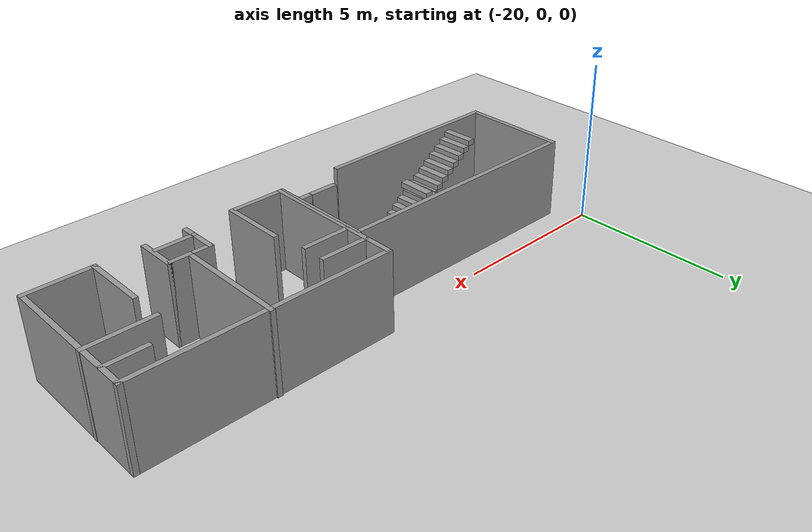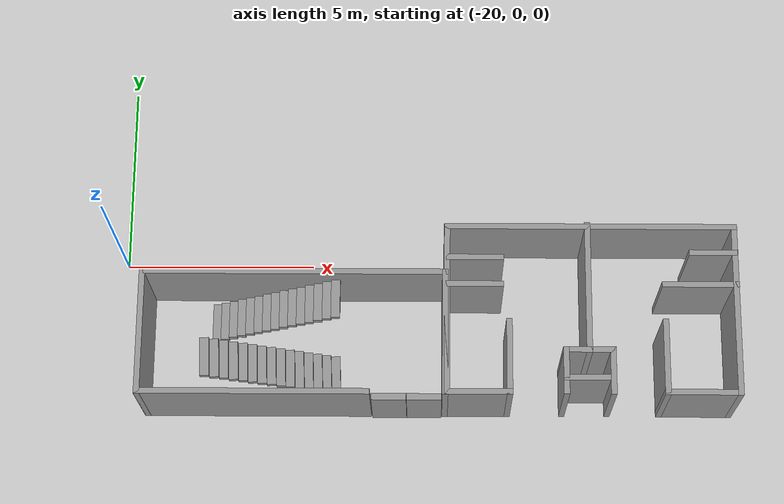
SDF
<sdf version="1.6">
 <world name="default">
  <model name="ground_plane">
   <static>1</static>
   <link name="link">
    <collision name="collision">
     <geometry><plane><normal>0 0 1</normal><size>100 100</size></plane></geometry>
     <surface><friction><ode><mu>100</mu><mu2>50</mu2></ode></friction></surface>
    </collision>
    <visual name="visual">
     <cast_shadows>0</cast_shadows>
     <geometry><plane><normal>0 0 1</normal><size>100 100</size></plane></geometry>
     <material>
      <script><uri>file://media/materials/scripts/gazebo.material</uri><name>Gazebo/Grey</name></script>
     </material>
    </visual>
   </link>
  </model>
  <model name="201/202">
   <pose>-7.65799 -1.81703 0 0 -0 0</pose>
   <link name="Wall_10">
    <collision name="Wall_10_Collision">
     <geometry><box><size>7.62002 0.15 2.5</size></box></geometry>
     <pose>0 0 1.25 0 -0 0</pose>
    </collision>
    <visual name="Wall_10_Visual">
     <pose>0 0 1.25 0 -0 0</pose>
     <geometry><box><size>7.62002 0.15 2.5</size></box></geometry>
     <material>
      <script><uri>file://media/materials/scripts/gazebo.material</uri><name>Gazebo/Grey</name></script>
      <ambient>1 1 1 1</ambient>
     </material>
     <meta><layer>0</layer></meta>
    </visual>
    <pose>-0.004655 2.1906 0 0 -0 3.14159</pose>
   </link>
   <link name="Wall_11">
    <collision name="Wall_11_Collision">
     <geometry><box><size>4.572 0.15 2.5</size></box></geometry>
     <pose>0 0 1.25 0 -0 0</pose>
    </collision>
    <visual name="Wall_11_Visual">
     <pose>0 0 1.25 0 -0 0</pose>
     <geometry><box><size>4.572 0.15 2.5</size></box></geometry>
     <material>
      <script><uri>file://media/materials/scripts/gazebo.material</uri><name>Gazebo/Grey</name></script>
      <ambient>1 1 1 1</ambient>
     </material>
     <meta><layer>0</layer></meta>
    </visual>
    <pose>-3.73965 -0.020398 0 0 -0 -1.5708</pose>
   </link>
   <link name="Wall_13">
    <collision name="Wall_13_Collision">
     <geometry><box><size>2 0.15 2.5</size></box></geometry>
     <pose>0 0 1.25 0 -0 0</pose>
    </collision>
    <visual name="Wall_13_Visual">
     <pose>0 0 1.25 0 -0 0</pose>
     <geometry><box><size>2 0.15 2.5</size></box></geometry>
     <material>
      <script><uri>file://media/materials/scripts/gazebo.material</uri><name>Gazebo/Grey</name></script>
      <ambient>1 1 1 1</ambient>
     </material>
     <meta><layer>0</layer></meta>
    </visual>
    <pose>2.80535 -2.23095 0 0 -0 3.14159</pose>
   </link>
   <link name="Wall_14">
    <collision name="Wall_14_Collision">
     <geometry><box><size>2 0.15 2.5</size></box></geometry>
     <pose>0 0 1.25 0 -0 0</pose>
    </collision>
    <visual name="Wall_14_Visual">
     <pose>0 0 1.25 0 -0 0</pose>
     <geometry><box><size>2 0.15 2.5</size></box></geometry>
     <material>
      <script><uri>file://media/materials/scripts/gazebo.material</uri><name>Gazebo/Grey</name></script>
      <ambient>1 1 1 1</ambient>
     </material>
     <meta><layer>0</layer></meta>
    </visual>
    <pose>1.88035 -1.30595 0 0 -0 1.5708</pose>
   </link>
   <link name="Wall_16">
    <collision name="Wall_16_Collision">
     <geometry><box><size>3.5 0.15 2.5</size></box></geometry>
     <pose>0 0 1.25 0 -0 0</pose>
    </collision>
    <visual name="Wall_16_Visual">
     <pose>0 0 1.25 0 -0 0</pose>
     <geometry><box><size>3.5 0.15 2.5</size></box></geometry>
     <material>
      <script><uri>file://media/materials/scripts/gazebo.material</uri><name>Gazebo/Grey</name></script>
      <ambient>1 1 1 1</ambient>
     </material>
     <meta><layer>0</layer></meta>
    </visual>
    <pose>-0.091763 0.556398 0 0 -0 -1.5708</pose>
   </link>
   <link name="Wall_17">
    <collision name="Wall_17_Collision">
     <geometry><box><size>0.75 0.15 2.5</size></box></geometry>
     <pose>0 0 1.25 0 -0 0</pose>
    </collision>
    <visual name="Wall_17_Visual">
     <pose>0 0 1.25 0 -0 0</pose>
     <geometry><box><size>0.75 0.15 2.5</size></box></geometry>
     <material>
      <script><uri>file://media/materials/scripts/gazebo.material</uri><name>Gazebo/Grey</name></script>
      <ambient>1 1 1 1</ambient>
     </material>
     <meta><layer>0</layer></meta>
    </visual>
    <pose>0.208236 -1.1186 0 0 -0 0</pose>
   </link>
   <link name="Wall_18">
    <collision name="Wall_18_Collision">
     <geometry><box><size>1.25 0.15 2.5</size></box></geometry>
     <pose>0 0 1.25 0 -0 0</pose>
    </collision>
    <visual name="Wall_18_Visual">
     <pose>0 0 1.25 0 -0 0</pose>
     <geometry><box><size>1.25 0.15 2.5</size></box></geometry>
     <material>
      <script><uri>file://media/materials/scripts/gazebo.material</uri><name>Gazebo/Grey</name></script>
      <ambient>1 1 1 1</ambient>
     </material>
     <meta><layer>0</layer></meta>
    </visual>
    <pose>0.508237 -1.6686 0 0 -0 -1.5708</pose>
   </link>
   <link name="Wall_20">
    <collision name="Wall_20_Collision">
     <geometry><box><size>0.75 0.15 2.5</size></box></geometry>
     <pose>0 0 1.25 0 -0 0</pose>
    </collision>
    <visual name="Wall_20_Visual">
     <pose>0 0 1.25 0 -0 0</pose>
     <geometry><box><size>0.75 0.15 2.5</size></box></geometry>
     <material>
      <script><uri>file://media/materials/scripts/gazebo.material</uri><name>Gazebo/Grey</name></script>
      <ambient>1 1 1 1</ambient>
     </material>
     <meta><layer>0</layer></meta>
    </visual>
    <pose>-0.391763 -1.1186 0 0 -0 3.14159</pose>
   </link>
   <link name="Wall_21">
    <collision name="Wall_21_Collision">
     <geometry><box><size>1.25 0.15 2.5</size></box></geometry>
     <pose>0 0 1.25 0 -0 0</pose>
    </collision>
    <visual name="Wall_21_Visual">
     <pose>0 0 1.25 0 -0 0</pose>
     <geometry><box><size>1.25 0.15 2.5</size></box></geometry>
     <material>
      <script><uri>file://media/materials/scripts/gazebo.material</uri><name>Gazebo/Grey</name></script>
      <ambient>1 1 1 1</ambient>
     </material>
     <meta><layer>0</layer></meta>
    </visual>
    <pose>-0.691764 -1.6686 0 0 -0 -1.5708</pose>
   </link>
   <link name="Wall_23">
    <collision name="Wall_23_Collision">
     <geometry><box><size>1.75 0.15 2.5</size></box></geometry>
     <pose>0 0 1.25 0 -0 0</pose>
    </collision>
    <visual name="Wall_23_Visual">
     <pose>0 0 1.25 0 -0 0</pose>
     <geometry><box><size>1.75 0.15 2.5</size></box></geometry>
     <material>
      <script><uri>file://media/materials/scripts/gazebo.material</uri><name>Gazebo/Grey</name></script>
      <ambient>1 1 1 1</ambient>
     </material>
     <meta><layer>0</layer></meta>
    </visual>
    <pose>-2.93966 -2.2314 0 0 -0 0</pose>
   </link>
   <link name="Wall_24">
    <collision name="Wall_24_Collision">
     <geometry><box><size>2 0.15 2.5</size></box></geometry>
     <pose>0 0 1.25 0 -0 0</pose>
    </collision>
    <visual name="Wall_24_Visual">
     <pose>0 0 1.25 0 -0 0</pose>
     <geometry><box><size>2 0.15 2.5</size></box></geometry>
     <material>
      <script><uri>file://media/materials/scripts/gazebo.material</uri><name>Gazebo/Grey</name></script>
      <ambient>1 1 1 1</ambient>
     </material>
     <meta><layer>0</layer></meta>
    </visual>
    <pose>-2.13965 -1.3064 0 0 -0 1.5708</pose>
   </link>
   <link name="Wall_28">
    <collision name="Wall_28_Collision">
     <geometry><box><size>1.5 0.15 2.5</size></box></geometry>
     <pose>0 0 1.25 0 -0 0</pose>
    </collision>
    <visual name="Wall_28_Visual">
     <pose>0 0 1.25 0 -0 0</pose>
     <geometry><box><size>1.5 0.15 2.5</size></box></geometry>
     <material>
      <script><uri>file://media/materials/scripts/gazebo.material</uri><name>Gazebo/Grey</name></script>
      <ambient>1 1 1 1</ambient>
     </material>
     <meta><layer>0</layer></meta>
    </visual>
    <pose>-3.01876 1.34811 0 0 -0 0</pose>
   </link>
   <link name="Wall_30">
    <collision name="Wall_30_Collision">
     <geometry><box><size>1.5 0.15 2.5</size></box></geometry>
     <pose>0 0 1.25 0 -0 0</pose>
    </collision>
    <visual name="Wall_30_Visual">
     <pose>0 0 1.25 0 -0 0</pose>
     <geometry><box><size>1.5 0.15 2.5</size></box></geometry>
     <material>
      <script><uri>file://media/materials/scripts/gazebo.material</uri><name>Gazebo/Grey</name></script>
      <ambient>1 1 1 1</ambient>
     </material>
     <meta><layer>0</layer></meta>
    </visual>
    <pose>-3.03023 0.625411 0 0 -0 0</pose>
   </link>
   <link name="Wall_32">
    <collision name="Wall_32_Collision">
     <geometry><box><size>2 0.15 2.5</size></box></geometry>
     <pose>0 0 1.25 0 -0 0</pose>
    </collision>
    <visual name="Wall_32_Visual">
     <pose>0 0 1.25 0 -0 0</pose>
     <geometry><box><size>2 0.15 2.5</size></box></geometry>
     <material>
      <script><uri>file://media/materials/scripts/gazebo.material</uri><name>Gazebo/Grey</name></script>
      <ambient>1 1 1 1</ambient>
     </material>
     <meta><layer>0</layer></meta>
    </visual>
    <pose>2.81466 0.625411 0 0 -0 3.14159</pose>
   </link>
   <link name="Wall_34">
    <collision name="Wall_34_Collision">
     <geometry><box><size>1.25 0.15 2.5</size></box></geometry>
     <pose>0 0 1.25 0 -0 0</pose>
    </collision>
    <visual name="Wall_34_Visual">
     <pose>0 0 1.25 0 -0 0</pose>
     <geometry><box><size>1.25 0.15 2.5</size></box></geometry>
     <material>
      <script><uri>file://media/materials/scripts/gazebo.material</uri><name>Gazebo/Grey</name></script>
      <ambient>1 1 1 1</ambient>
     </material>
     <meta><layer>0</layer></meta>
    </visual>
    <pose>3.16672 1.48576 0 0 -0 3.14159</pose>
   </link>
   <link name="Wall_36">
    <collision name="Wall_36_Collision">
     <geometry><box><size>1.25 0.15 2.5</size></box></geometry>
     <pose>0 0 1.25 0 -0 0</pose>
    </collision>
    <visual name="Wall_36_Visual">
     <pose>0 0 1.25 0 -0 0</pose>
     <geometry><box><size>1.25 0.15 2.5</size></box></geometry>
     <material>
      <script><uri>file://media/materials/scripts/gazebo.material</uri><name>Gazebo/Grey</name></script>
      <ambient>1 1 1 1</ambient>
     </material>
     <meta><layer>0</layer></meta>
    </visual>
    <pose>-0.138273 -1.8524 0 0 -0 0</pose>
   </link>
   <link name="Wall_9">
    <collision name="Wall_9_Collision">
     <geometry><box><size>4.572 0.15 2.5</size></box></geometry>
     <pose>0 0 1.25 0 -0 0</pose>
    </collision>
    <visual name="Wall_9_Visual">
     <pose>0 0 1.25 0 -0 0</pose>
     <geometry><box><size>4.572 0.15 2.5</size></box></geometry>
     <material>
      <script><uri>file://media/materials/scripts/gazebo.material</uri><name>Gazebo/Grey</name></script>
      <ambient>1 1 1 1</ambient>
     </material>
     <meta><layer>0</layer></meta>
    </visual>
    <pose>3.73035 -0.020175 0 0 -0 1.5708</pose>
   </link>
   <static>1</static>
  </model>
  <model name="197A">
   <pose>-15.372 -2.4638 0 0 -0 0</pose>
   <link name="Door_4">
    <collision name="Door_4_Collision">
     <geometry><box><size>0.9 0.17 2</size></box></geometry>
     <pose>0 0 1 0 -0 0</pose>
    </collision>
    <visual name="Door_4_Visual">
     <pose>0 0 1 0 -0 0</pose>
     <geometry><box><size>0.9 0.17 2</size></box></geometry>
     <material>
      <script><uri>file://media/materials/scripts/gazebo.material</uri><name>Gazebo/Grey</name></script>
     </material>
    </visual>
    <pose>3.38585 -1.61049 0 0 -0 0</pose>
   </link>
   <link name="Door_5">
    <collision name="Door_5_Collision">
     <geometry><box><size>0.9 0.17 2</size></box></geometry>
     <pose>0 0 1 0 -0 0</pose>
    </collision>
    <visual name="Door_5_Visual">
     <pose>0 0 1 0 -0 0</pose>
     <geometry><box><size>0.9 0.17 2</size></box></geometry>
     <material>
      <script><uri>file://media/materials/scripts/gazebo.material</uri><name>Gazebo/Grey</name></script>
     </material>
    </visual>
    <pose>2.47636 -1.61049 0 0 -0 0</pose>
   </link>
   <link name="Wall_33">
    <collision name="Wall_33_Collision">
     <geometry><box><size>3.336 0.15 2.5</size></box></geometry>
     <pose>0 0 1.25 0 -0 0</pose>
    </collision>
    <visual name="Wall_33_Visual">
     <pose>0 0 1.25 0 -0 0</pose>
     <geometry><box><size>3.336 0.15 2.5</size></box></geometry>
     <material>
      <script><uri>file://media/materials/scripts/gazebo.material</uri><name>Gazebo/Grey</name></script>
      <ambient>1 1 1 1</ambient>
     </material>
     <meta><layer>0</layer></meta>
    </visual>
    <pose>3.925 -0 0 0 -0 1.5708</pose>
   </link>
   <link name="Wall_34">
    <collision name="Wall_34_Collision">
     <geometry><box><size>8 0.15 2.5</size></box></geometry>
     <pose>0 0 1.25 0 -0 0</pose>
    </collision>
    <visual name="Wall_34_Visual">
     <pose>0 0 1.25 0 -0 0</pose>
     <geometry><box><size>8 0.15 2.5</size></box></geometry>
     <material>
      <script><uri>file://media/materials/scripts/gazebo.material</uri><name>Gazebo/Grey</name></script>
      <ambient>1 1 1 1</ambient>
     </material>
     <meta><layer>0</layer></meta>
    </visual>
    <pose>-0 1.593 0 0 -0 3.14159</pose>
   </link>
   <link name="Wall_35">
    <collision name="Wall_35_Collision">
     <geometry><box><size>3.336 0.15 2.5</size></box></geometry>
     <pose>0 0 1.25 0 -0 0</pose>
    </collision>
    <visual name="Wall_35_Visual">
     <pose>0 0 1.25 0 -0 0</pose>
     <geometry><box><size>3.336 0.15 2.5</size></box></geometry>
     <material>
      <script><uri>file://media/materials/scripts/gazebo.material</uri><name>Gazebo/Grey</name></script>
      <ambient>1 1 1 1</ambient>
     </material>
     <meta><layer>0</layer></meta>
    </visual>
    <pose>-3.925 -0 0 0 -0 -1.5708</pose>
   </link>
   <link name="Wall_37">
    <collision name="Wall_37_Collision">
     <geometry><box><size>6 0.15 2.5</size></box></geometry>
     <pose>0 0 1.25 0 -0 0</pose>
    </collision>
    <visual name="Wall_37_Visual">
     <pose>0 0 1.25 0 -0 0</pose>
     <geometry><box><size>6 0.15 2.5</size></box></geometry>
     <material>
      <script><uri>file://media/materials/scripts/gazebo.material</uri><name>Gazebo/Grey</name></script>
      <ambient>1 1 1 1</ambient>
     </material>
     <meta><layer>0</layer></meta>
    </visual>
    <pose>-1 -1.593 0 0 -0 0</pose>
   </link>
   <static>1</static>
  </model>
  <model name="Staircase">
   <pose>-15.9073 -1.60516 0 0 -0 0</pose>
   <link name="Stairs_0">
    <visual name="Stairs_0_Visual_0">
     <pose>-1.63333 -0 0.083333 0 -0 1.5708</pose>
     <geometry><box><size>1 0.233333 0.166667</size></box></geometry>
     <material>
      <script><uri>file://media/materials/scripts/gazebo.material</uri><name>Gazebo/Grey</name></script>
      <ambient>1 1 1 1</ambient>
     </material>
     <meta><layer>0</layer></meta>
    </visual>
    <collision name="Stairs_0_Collision_0">
     <geometry><box><size>1 0.233333 0.166667</size></box></geometry>
     <pose>-1.63333 -0 0.083333 0 -0 1.5708</pose>
    </collision>
    <visual name="Stairs_0_Visual_1">
     <pose>-1.4 -0 0.25 0 -0 1.5708</pose>
     <geometry><box><size>1 0.233333 0.166667</size></box></geometry>
     <material>
      <script><uri>file://media/materials/scripts/gazebo.material</uri><name>Gazebo/Grey</name></script>
      <ambient>1 1 1 1</ambient>
     </material>
     <meta><layer>0</layer></meta>
    </visual>
    <collision name="Stairs_0_Collision_1">
     <geometry><box><size>1 0.233333 0.166667</size></box></geometry>
     <pose>-1.4 -0 0.25 0 -0 1.5708</pose>
    </collision>
    <visual name="Stairs_0_Visual_2">
     <pose>-1.16667 -0 0.416667 0 -0 1.5708</pose>
     <geometry><box><size>1 0.233333 0.166667</size></box></geometry>
     <material>
      <script><uri>file://media/materials/scripts/gazebo.material</uri><name>Gazebo/Grey</name></script>
      <ambient>1 1 1 1</ambient>
     </material>
     <meta><layer>0</layer></meta>
    </visual>
    <collision name="Stairs_0_Collision_2">
     <geometry><box><size>1 0.233333 0.166667</size></box></geometry>
     <pose>-1.16667 -0 0.416667 0 -0 1.5708</pose>
    </collision>
    <visual name="Stairs_0_Visual_3">
     <pose>-0.933333 -0 0.583333 0 -0 1.5708</pose>
     <geometry><box><size>1 0.233333 0.166667</size></box></geometry>
     <material>
      <script><uri>file://media/materials/scripts/gazebo.material</uri><name>Gazebo/Grey</name></script>
      <ambient>1 1 1 1</ambient>
     </material>
     <meta><layer>0</layer></meta>
    </visual>
    <collision name="Stairs_0_Collision_3">
     <geometry><box><size>1 0.233333 0.166667</size></box></geometry>
     <pose>-0.933333 -0 0.583333 0 -0 1.5708</pose>
    </collision>
    <visual name="Stairs_0_Visual_4">
     <pose>-0.7 0 0.75 0 -0 1.5708</pose>
     <geometry><box><size>1 0.233333 0.166667</size></box></geometry>
     <material>
      <script><uri>file://media/materials/scripts/gazebo.material</uri><name>Gazebo/Grey</name></script>
      <ambient>1 1 1 1</ambient>
     </material>
     <meta><layer>0</layer></meta>
    </visual>
    <collision name="Stairs_0_Collision_4">
     <geometry><box><size>1 0.233333 0.166667</size></box></geometry>
     <pose>-0.7 0 0.75 0 -0 1.5708</pose>
    </collision>
    <visual name="Stairs_0_Visual_5">
     <pose>-0.466667 0 0.916667 0 -0 1.5708</pose>
     <geometry><box><size>1 0.233333 0.166667</size></box></geometry>
     <material>
      <script><uri>file://media/materials/scripts/gazebo.material</uri><name>Gazebo/Grey</name></script>
      <ambient>1 1 1 1</ambient>
     </material>
     <meta><layer>0</layer></meta>
    </visual>
    <collision name="Stairs_0_Collision_5">
     <geometry><box><size>1 0.233333 0.166667</size></box></geometry>
     <pose>-0.466667 0 0.916667 0 -0 1.5708</pose>
    </collision>
    <visual name="Stairs_0_Visual_6">
     <pose>-0.233333 0 1.08333 0 -0 1.5708</pose>
     <geometry><box><size>1 0.233333 0.166667</size></box></geometry>
     <material>
      <script><uri>file://media/materials/scripts/gazebo.material</uri><name>Gazebo/Grey</name></script>
      <ambient>1 1 1 1</ambient>
     </material>
     <meta><layer>0</layer></meta>
    </visual>
    <collision name="Stairs_0_Collision_6">
     <geometry><box><size>1 0.233333 0.166667</size></box></geometry>
     <pose>-0.233333 0 1.08333 0 -0 1.5708</pose>
    </collision>
    <visual name="Stairs_0_Visual_7">
     <pose>0 0 1.25 0 -0 1.5708</pose>
     <geometry><box><size>1 0.233333 0.166667</size></box></geometry>
     <material>
      <script><uri>file://media/materials/scripts/gazebo.material</uri><name>Gazebo/Grey</name></script>
      <ambient>1 1 1 1</ambient>
     </material>
     <meta><layer>0</layer></meta>
    </visual>
    <collision name="Stairs_0_Collision_7">
     <geometry><box><size>1 0.233333 0.166667</size></box></geometry>
     <pose>0 0 1.25 0 -0 1.5708</pose>
    </collision>
    <visual name="Stairs_0_Visual_8">
     <pose>0.233333 0 1.41667 0 -0 1.5708</pose>
     <geometry><box><size>1 0.233333 0.166667</size></box></geometry>
     <material>
      <script><uri>file://media/materials/scripts/gazebo.material</uri><name>Gazebo/Grey</name></script>
      <ambient>1 1 1 1</ambient>
     </material>
     <meta><layer>0</layer></meta>
    </visual>
    <collision name="Stairs_0_Collision_8">
     <geometry><box><size>1 0.233333 0.166667</size></box></geometry>
     <pose>0.233333 0 1.41667 0 -0 1.5708</pose>
    </collision>
    <visual name="Stairs_0_Visual_9">
     <pose>0.466667 0 1.58333 0 -0 1.5708</pose>
     <geometry><box><size>1 0.233333 0.166667</size></box></geometry>
     <material>
      <script><uri>file://media/materials/scripts/gazebo.material</uri><name>Gazebo/Grey</name></script>
      <ambient>1 1 1 1</ambient>
     </material>
     <meta><layer>0</layer></meta>
    </visual>
    <collision name="Stairs_0_Collision_9">
     <geometry><box><size>1 0.233333 0.166667</size></box></geometry>
     <pose>0.466667 0 1.58333 0 -0 1.5708</pose>
    </collision>
    <visual name="Stairs_0_Visual_10">
     <pose>0.7 0 1.75 0 -0 1.5708</pose>
     <geometry><box><size>1 0.233333 0.166667</size></box></geometry>
     <material>
      <script><uri>file://media/materials/scripts/gazebo.material</uri><name>Gazebo/Grey</name></script>
      <ambient>1 1 1 1</ambient>
     </material>
     <meta><layer>0</layer></meta>
    </visual>
    <collision name="Stairs_0_Collision_10">
     <geometry><box><size>1 0.233333 0.166667</size></box></geometry>
     <pose>0.7 0 1.75 0 -0 1.5708</pose>
    </collision>
    <visual name="Stairs_0_Visual_11">
     <pose>0.933334 0 1.91667 0 -0 1.5708</pose>
     <geometry><box><size>1 0.233333 0.166667</size></box></geometry>
     <material>
      <script><uri>file://media/materials/scripts/gazebo.material</uri><name>Gazebo/Grey</name></script>
      <ambient>1 1 1 1</ambient>
     </material>
     <meta><layer>0</layer></meta>
    </visual>
    <collision name="Stairs_0_Collision_11">
     <geometry><box><size>1 0.233333 0.166667</size></box></geometry>
     <pose>0.933334 0 1.91667 0 -0 1.5708</pose>
    </collision>
    <visual name="Stairs_0_Visual_12">
     <pose>1.16667 0 2.08333 0 -0 1.5708</pose>
     <geometry><box><size>1 0.233333 0.166667</size></box></geometry>
     <material>
      <script><uri>file://media/materials/scripts/gazebo.material</uri><name>Gazebo/Grey</name></script>
      <ambient>1 1 1 1</ambient>
     </material>
     <meta><layer>0</layer></meta>
    </visual>
    <collision name="Stairs_0_Collision_12">
     <geometry><box><size>1 0.233333 0.166667</size></box></geometry>
     <pose>1.16667 0 2.08333 0 -0 1.5708</pose>
    </collision>
    <visual name="Stairs_0_Visual_13">
     <pose>1.4 0 2.25 0 -0 1.5708</pose>
     <geometry><box><size>1 0.233333 0.166667</size></box></geometry>
     <material>
      <script><uri>file://media/materials/scripts/gazebo.material</uri><name>Gazebo/Grey</name></script>
      <ambient>1 1 1 1</ambient>
     </material>
     <meta><layer>0</layer></meta>
    </visual>
    <collision name="Stairs_0_Collision_13">
     <geometry><box><size>1 0.233333 0.166667</size></box></geometry>
     <pose>1.4 0 2.25 0 -0 1.5708</pose>
    </collision>
    <visual name="Stairs_0_Visual_14">
     <pose>1.63333 0 2.41667 0 -0 1.5708</pose>
     <geometry><box><size>1 0.233333 0.166667</size></box></geometry>
     <material>
      <script><uri>file://media/materials/scripts/gazebo.material</uri><name>Gazebo/Grey</name></script>
      <ambient>1 1 1 1</ambient>
     </material>
     <meta><layer>0</layer></meta>
    </visual>
    <collision name="Stairs_0_Collision_14">
     <geometry><box><size>1 0.233333 0.166667</size></box></geometry>
     <pose>1.63333 0 2.41667 0 -0 1.5708</pose>
    </collision>
   </link>
   <static>1</static>
  </model>
  <model name="Staircase_0">
   <link name="Stairs_0">
    <visual name="Stairs_0_Visual_2">
     <pose>-1.16667 -0 0.416667 0 -0 1.5708</pose>
     <geometry><box><size>1 0.233333 0.166667</size></box></geometry>
     <material>
      <script><uri>file://media/materials/scripts/gazebo.material</uri><name>Gazebo/Grey</name></script>
      <ambient>1 1 1 1</ambient>
      <shader type="pixel"/>
     </material>
     <meta><layer>0</layer></meta>
    </visual>
    <visual name="Stairs_0_Visual_3">
     <pose>-0.933333 -0 0.583333 0 -0 1.5708</pose>
     <geometry><box><size>1 0.233333 0.166667</size></box></geometry>
     <material>
      <script><uri>file://media/materials/scripts/gazebo.material</uri><name>Gazebo/Grey</name></script>
      <ambient>1 1 1 1</ambient>
      <shader type="pixel"/>
     </material>
     <meta><layer>0</layer></meta>
    </visual>
    <visual name="Stairs_0_Visual_4">
     <pose>-0.7 0 0.75 0 -0 1.5708</pose>
     <geometry><box><size>1 0.233333 0.166667</size></box></geometry>
     <material>
      <script><uri>file://media/materials/scripts/gazebo.material</uri><name>Gazebo/Grey</name></script>
      <ambient>1 1 1 1</ambient>
      <shader type="pixel"/>
     </material>
     <meta><layer>0</layer></meta>
    </visual>
    <visual name="Stairs_0_Visual_5">
     <pose>-0.466667 0 0.916667 0 -0 1.5708</pose>
     <geometry><box><size>1 0.233333 0.166667</size></box></geometry>
     <material>
      <script><uri>file://media/materials/scripts/gazebo.material</uri><name>Gazebo/Grey</name></script>
      <ambient>1 1 1 1</ambient>
      <shader type="pixel"/>
     </material>
     <meta><layer>0</layer></meta>
    </visual>
    <visual name="Stairs_0_Visual_6">
     <pose>-0.233333 0 1.08333 0 -0 1.5708</pose>
     <geometry><box><size>1 0.233333 0.166667</size></box></geometry>
     <material>
      <script><uri>file://media/materials/scripts/gazebo.material</uri><name>Gazebo/Grey</name></script>
      <ambient>1 1 1 1</ambient>
      <shader type="pixel"/>
     </material>
     <meta><layer>0</layer></meta>
    </visual>
    <visual name="Stairs_0_Visual_7">
     <pose>0 0 1.25 0 -0 1.5708</pose>
     <geometry><box><size>1 0.233333 0.166667</size></box></geometry>
     <material>
      <script><uri>file://media/materials/scripts/gazebo.material</uri><name>Gazebo/Grey</name></script>
      <ambient>1 1 1 1</ambient>
      <shader type="pixel"/>
     </material>
     <meta><layer>0</layer></meta>
    </visual>
    <visual name="Stairs_0_Visual_8">
     <pose>0.233333 0 1.41667 0 -0 1.5708</pose>
     <geometry><box><size>1 0.233333 0.166667</size></box></geometry>
     <material>
      <script><uri>file://media/materials/scripts/gazebo.material</uri><name>Gazebo/Grey</name></script>
      <ambient>1 1 1 1</ambient>
      <shader type="pixel"/>
     </material>
     <meta><layer>0</layer></meta>
    </visual>
    <visual name="Stairs_0_Visual_9">
     <pose>0.466667 0 1.58333 0 -0 1.5708</pose>
     <geometry><box><size>1 0.233333 0.166667</size></box></geometry>
     <material>
      <script><uri>file://media/materials/scripts/gazebo.material</uri><name>Gazebo/Grey</name></script>
      <ambient>1 1 1 1</ambient>
      <shader type="pixel"/>
     </material>
     <meta><layer>0</layer></meta>
    </visual>
    <visual name="Stairs_0_Visual_10">
     <pose>0.7 0 1.75 0 -0 1.5708</pose>
     <geometry><box><size>1 0.233333 0.166667</size></box></geometry>
     <material>
      <script><uri>file://media/materials/scripts/gazebo.material</uri><name>Gazebo/Grey</name></script>
      <ambient>1 1 1 1</ambient>
      <shader type="pixel"/>
     </material>
     <meta><layer>0</layer></meta>
    </visual>
    <visual name="Stairs_0_Visual_11">
     <pose>0.933334 0 1.91667 0 -0 1.5708</pose>
     <geometry><box><size>1 0.233333 0.166667</size></box></geometry>
     <material>
      <script><uri>file://media/materials/scripts/gazebo.material</uri><name>Gazebo/Grey</name></script>
      <ambient>1 1 1 1</ambient>
      <shader type="pixel"/>
     </material>
     <meta><layer>0</layer></meta>
    </visual>
    <visual name="Stairs_0_Visual_12">
     <pose>1.16667 0 2.08333 0 -0 1.5708</pose>
     <geometry><box><size>1 0.233333 0.166667</size></box></geometry>
     <material>
      <script><uri>file://media/materials/scripts/gazebo.material</uri><name>Gazebo/Grey</name></script>
      <ambient>1 1 1 1</ambient>
      <shader type="pixel"/>
     </material>
     <meta><layer>0</layer></meta>
    </visual>
    <visual name="Stairs_0_Visual_13">
     <pose>1.4 0 2.25 0 -0 1.5708</pose>
     <geometry><box><size>1 0.233333 0.166667</size></box></geometry>
     <material>
      <script><uri>file://media/materials/scripts/gazebo.material</uri><name>Gazebo/Grey</name></script>
      <ambient>1 1 1 1</ambient>
      <shader type="pixel"/>
     </material>
     <meta><layer>0</layer></meta>
    </visual>
    <visual name="Stairs_0_Visual_14">
     <pose>1.63333 0 2.41667 0 -0 1.5708</pose>
     <geometry><box><size>1 0.233333 0.166667</size></box></geometry>
     <material>
      <script><uri>file://media/materials/scripts/gazebo.material</uri><name>Gazebo/Grey</name></script>
      <ambient>1 1 1 1</ambient>
      <shader type="pixel"/>
     </material>
     <meta><layer>0</layer></meta>
    </visual>
    <visual name="Stairs_0_Visual_0">
     <pose>-1.63333 -0 0.083333 0 -0 1.5708</pose>
     <geometry><box><size>1 0.233333 0.166667</size></box></geometry>
     <material>
      <script><uri>file://media/materials/scripts/gazebo.material</uri><name>Gazebo/Grey</name></script>
      <ambient>1 1 1 1</ambient>
      <shader type="pixel"/>
     </material>
     <meta><layer>0</layer></meta>
    </visual>
    <visual name="Stairs_0_Visual_1">
     <pose>-1.4 -0 0.25 0 -0 1.5708</pose>
     <geometry><box><size>1 0.233333 0.166667</size></box></geometry>
     <material>
      <script><uri>file://media/materials/scripts/gazebo.material</uri><name>Gazebo/Grey</name></script>
      <ambient>1 1 1 1</ambient>
      <shader type="pixel"/>
     </material>
     <meta><layer>0</layer></meta>
    </visual>
    <collision name="Stairs_0_Collision_0">
     <pose>-1.63333 0 0.083333 0 -0 1.5708</pose>
     <geometry><box><size>1 0.233333 0.166667</size></box></geometry>
     <surface>
      <friction>
       <ode><mu>1</mu><mu2>1</mu2><fdir1>0 0 0</fdir1><slip1>0</slip1><slip2>0</slip2></ode>
       <torsional>
        <coefficient>1</coefficient>
        <patch_radius>0</patch_radius>
        <surface_radius>0</surface_radius>
        <use_patch_radius>1</use_patch_radius>
        <ode><slip>0</slip></ode>
       </torsional>
      </friction>
      <bounce><restitution_coefficient>0</restitution_coefficient><threshold>1e+06</threshold></bounce>
      <contact>
       <collide_without_contact>0</collide_without_contact>
       <collide_without_contact_bitmask>1</collide_without_contact_bitmask>
       <collide_bitmask>1</collide_bitmask>
       <ode>
        <soft_cfm>0</soft_cfm>
        <soft_erp>0.2</soft_erp>
        <kp>1e+13</kp>
        <kd>1</kd>
        <max_vel>0.01</max_vel>
        <min_depth>0</min_depth>
       </ode>
       <bullet>
        <split_impulse>1</split_impulse>
        <split_impulse_penetration_threshold>-0.01</split_impulse_penetration_threshold>
        <soft_cfm>0</soft_cfm>
        <soft_erp>0.2</soft_erp>
        <kp>1e+13</kp>
        <kd>1</kd>
       </bullet>
      </contact>
     </surface>
    </collision>
    <collision name="Stairs_0_Collision_1">
     <pose>-1.4 0 0.25 0 -0 1.5708</pose>
     <geometry><box><size>1 0.233333 0.166667</size></box></geometry>
     <surface>
      <friction>
       <ode><mu>1</mu><mu2>1</mu2><fdir1>0 0 0</fdir1><slip1>0</slip1><slip2>0</slip2></ode>
       <torsional>
        <coefficient>1</coefficient>
        <patch_radius>0</patch_radius>
        <surface_radius>0</surface_radius>
        <use_patch_radius>1</use_patch_radius>
        <ode><slip>0</slip></ode>
       </torsional>
      </friction>
      <bounce><restitution_coefficient>0</restitution_coefficient><threshold>1e+06</threshold></bounce>
      <contact>
       <collide_without_contact>0</collide_without_contact>
       <collide_without_contact_bitmask>1</collide_without_contact_bitmask>
       <collide_bitmask>1</collide_bitmask>
       <ode>
        <soft_cfm>0</soft_cfm>
        <soft_erp>0.2</soft_erp>
        <kp>1e+13</kp>
        <kd>1</kd>
        <max_vel>0.01</max_vel>
        <min_depth>0</min_depth>
       </ode>
       <bullet>
        <split_impulse>1</split_impulse>
        <split_impulse_penetration_threshold>-0.01</split_impulse_penetration_threshold>
        <soft_cfm>0</soft_cfm>
        <soft_erp>0.2</soft_erp>
        <kp>1e+13</kp>
        <kd>1</kd>
       </bullet>
      </contact>
     </surface>
    </collision>
    <collision name="Stairs_0_Collision_2">
     <pose>-1.16667 0 0.416667 0 -0 1.5708</pose>
     <geometry><box><size>1 0.233333 0.166667</size></box></geometry>
     <surface>
      <friction>
       <ode><mu>1</mu><mu2>1</mu2><fdir1>0 0 0</fdir1><slip1>0</slip1><slip2>0</slip2></ode>
       <torsional>
        <coefficient>1</coefficient>
        <patch_radius>0</patch_radius>
        <surface_radius>0</surface_radius>
        <use_patch_radius>1</use_patch_radius>
        <ode><slip>0</slip></ode>
       </torsional>
      </friction>
      <bounce><restitution_coefficient>0</restitution_coefficient><threshold>1e+06</threshold></bounce>
      <contact>
       <collide_without_contact>0</collide_without_contact>
       <collide_without_contact_bitmask>1</collide_without_contact_bitmask>
       <collide_bitmask>1</collide_bitmask>
       <ode>
        <soft_cfm>0</soft_cfm>
        <soft_erp>0.2</soft_erp>
        <kp>1e+13</kp>
        <kd>1</kd>
        <max_vel>0.01</max_vel>
        <min_depth>0</min_depth>
       </ode>
       <bullet>
        <split_impulse>1</split_impulse>
        <split_impulse_penetration_threshold>-0.01</split_impulse_penetration_threshold>
        <soft_cfm>0</soft_cfm>
        <soft_erp>0.2</soft_erp>
        <kp>1e+13</kp>
        <kd>1</kd>
       </bullet>
      </contact>
     </surface>
    </collision>
    <collision name="Stairs_0_Collision_3">
     <pose>-0.933333 0 0.583333 0 -0 1.5708</pose>
     <geometry><box><size>1 0.233333 0.166667</size></box></geometry>
     <surface>
      <friction>
       <ode><mu>1</mu><mu2>1</mu2><fdir1>0 0 0</fdir1><slip1>0</slip1><slip2>0</slip2></ode>
       <torsional>
        <coefficient>1</coefficient>
        <patch_radius>0</patch_radius>
        <surface_radius>0</surface_radius>
        <use_patch_radius>1</use_patch_radius>
        <ode><slip>0</slip></ode>
       </torsional>
      </friction>
      <bounce><restitution_coefficient>0</restitution_coefficient><threshold>1e+06</threshold></bounce>
      <contact>
       <collide_without_contact>0</collide_without_contact>
       <collide_without_contact_bitmask>1</collide_without_contact_bitmask>
       <collide_bitmask>1</collide_bitmask>
       <ode>
        <soft_cfm>0</soft_cfm>
        <soft_erp>0.2</soft_erp>
        <kp>1e+13</kp>
        <kd>1</kd>
        <max_vel>0.01</max_vel>
        <min_depth>0</min_depth>
       </ode>
       <bullet>
        <split_impulse>1</split_impulse>
        <split_impulse_penetration_threshold>-0.01</split_impulse_penetration_threshold>
        <soft_cfm>0</soft_cfm>
        <soft_erp>0.2</soft_erp>
        <kp>1e+13</kp>
        <kd>1</kd>
       </bullet>
      </contact>
     </surface>
    </collision>
    <collision name="Stairs_0_Collision_4">
     <pose>-0.7 0 0.75 0 -0 1.5708</pose>
     <geometry><box><size>1 0.233333 0.166667</size></box></geometry>
     <surface>
      <friction>
       <ode><mu>1</mu><mu2>1</mu2><fdir1>0 0 0</fdir1><slip1>0</slip1><slip2>0</slip2></ode>
       <torsional>
        <coefficient>1</coefficient>
        <patch_radius>0</patch_radius>
        <surface_radius>0</surface_radius>
        <use_patch_radius>1</use_patch_radius>
        <ode><slip>0</slip></ode>
       </torsional>
      </friction>
      <bounce><restitution_coefficient>0</restitution_coefficient><threshold>1e+06</threshold></bounce>
      <contact>
       <collide_without_contact>0</collide_without_contact>
       <collide_without_contact_bitmask>1</collide_without_contact_bitmask>
       <collide_bitmask>1</collide_bitmask>
       <ode>
        <soft_cfm>0</soft_cfm>
        <soft_erp>0.2</soft_erp>
        <kp>1e+13</kp>
        <kd>1</kd>
        <max_vel>0.01</max_vel>
        <min_depth>0</min_depth>
       </ode>
       <bullet>
        <split_impulse>1</split_impulse>
        <split_impulse_penetration_threshold>-0.01</split_impulse_penetration_threshold>
        <soft_cfm>0</soft_cfm>
        <soft_erp>0.2</soft_erp>
        <kp>1e+13</kp>
        <kd>1</kd>
       </bullet>
      </contact>
     </surface>
    </collision>
    <collision name="Stairs_0_Collision_5">
     <pose>-0.466667 0 0.916667 0 -0 1.5708</pose>
     <geometry><box><size>1 0.233333 0.166667</size></box></geometry>
     <surface>
      <friction>
       <ode><mu>1</mu><mu2>1</mu2><fdir1>0 0 0</fdir1><slip1>0</slip1><slip2>0</slip2></ode>
       <torsional>
        <coefficient>1</coefficient>
        <patch_radius>0</patch_radius>
        <surface_radius>0</surface_radius>
        <use_patch_radius>1</use_patch_radius>
        <ode><slip>0</slip></ode>
       </torsional>
      </friction>
      <bounce><restitution_coefficient>0</restitution_coefficient><threshold>1e+06</threshold></bounce>
      <contact>
       <collide_without_contact>0</collide_without_contact>
       <collide_without_contact_bitmask>1</collide_without_contact_bitmask>
       <collide_bitmask>1</collide_bitmask>
       <ode>
        <soft_cfm>0</soft_cfm>
        <soft_erp>0.2</soft_erp>
        <kp>1e+13</kp>
        <kd>1</kd>
        <max_vel>0.01</max_vel>
        <min_depth>0</min_depth>
       </ode>
       <bullet>
        <split_impulse>1</split_impulse>
        <split_impulse_penetration_threshold>-0.01</split_impulse_penetration_threshold>
        <soft_cfm>0</soft_cfm>
        <soft_erp>0.2</soft_erp>
        <kp>1e+13</kp>
        <kd>1</kd>
       </bullet>
      </contact>
     </surface>
    </collision>
    <collision name="Stairs_0_Collision_6">
     <pose>-0.233333 0 1.08333 0 -0 1.5708</pose>
     <geometry><box><size>1 0.233333 0.166667</size></box></geometry>
     <surface>
      <friction>
       <ode><mu>1</mu><mu2>1</mu2><fdir1>0 0 0</fdir1><slip1>0</slip1><slip2>0</slip2></ode>
       <torsional>
        <coefficient>1</coefficient>
        <patch_radius>0</patch_radius>
        <surface_radius>0</surface_radius>
        <use_patch_radius>1</use_patch_radius>
        <ode><slip>0</slip></ode>
       </torsional>
      </friction>
      <bounce><restitution_coefficient>0</restitution_coefficient><threshold>1e+06</threshold></bounce>
      <contact>
       <collide_without_contact>0</collide_without_contact>
       <collide_without_contact_bitmask>1</collide_without_contact_bitmask>
       <collide_bitmask>1</collide_bitmask>
       <ode>
        <soft_cfm>0</soft_cfm>
        <soft_erp>0.2</soft_erp>
        <kp>1e+13</kp>
        <kd>1</kd>
        <max_vel>0.01</max_vel>
        <min_depth>0</min_depth>
       </ode>
       <bullet>
        <split_impulse>1</split_impulse>
        <split_impulse_penetration_threshold>-0.01</split_impulse_penetration_threshold>
        <soft_cfm>0</soft_cfm>
        <soft_erp>0.2</soft_erp>
        <kp>1e+13</kp>
        <kd>1</kd>
       </bullet>
      </contact>
     </surface>
    </collision>
    <collision name="Stairs_0_Collision_7">
     <pose>0 0 1.25 0 -0 1.5708</pose>
     <geometry><box><size>1 0.233333 0.166667</size></box></geometry>
     <surface>
      <friction>
       <ode><mu>1</mu><mu2>1</mu2><fdir1>0 0 0</fdir1><slip1>0</slip1><slip2>0</slip2></ode>
       <torsional>
        <coefficient>1</coefficient>
        <patch_radius>0</patch_radius>
        <surface_radius>0</surface_radius>
        <use_patch_radius>1</use_patch_radius>
        <ode><slip>0</slip></ode>
       </torsional>
      </friction>
      <bounce><restitution_coefficient>0</restitution_coefficient><threshold>1e+06</threshold></bounce>
      <contact>
       <collide_without_contact>0</collide_without_contact>
       <collide_without_contact_bitmask>1</collide_without_contact_bitmask>
       <collide_bitmask>1</collide_bitmask>
       <ode>
        <soft_cfm>0</soft_cfm>
        <soft_erp>0.2</soft_erp>
        <kp>1e+13</kp>
        <kd>1</kd>
        <max_vel>0.01</max_vel>
        <min_depth>0</min_depth>
       </ode>
       <bullet>
        <split_impulse>1</split_impulse>
        <split_impulse_penetration_threshold>-0.01</split_impulse_penetration_threshold>
        <soft_cfm>0</soft_cfm>
        <soft_erp>0.2</soft_erp>
        <kp>1e+13</kp>
        <kd>1</kd>
       </bullet>
      </contact>
     </surface>
    </collision>
    <collision name="Stairs_0_Collision_8">
     <pose>0.233333 0 1.41667 0 -0 1.5708</pose>
     <geometry><box><size>1 0.233333 0.166667</size></box></geometry>
     <surface>
      <friction>
       <ode><mu>1</mu><mu2>1</mu2><fdir1>0 0 0</fdir1><slip1>0</slip1><slip2>0</slip2></ode>
       <torsional>
        <coefficient>1</coefficient>
        <patch_radius>0</patch_radius>
        <surface_radius>0</surface_radius>
        <use_patch_radius>1</use_patch_radius>
        <ode><slip>0</slip></ode>
       </torsional>
      </friction>
      <bounce><restitution_coefficient>0</restitution_coefficient><threshold>1e+06</threshold></bounce>
      <contact>
       <collide_without_contact>0</collide_without_contact>
       <collide_without_contact_bitmask>1</collide_without_contact_bitmask>
       <collide_bitmask>1</collide_bitmask>
       <ode>
        <soft_cfm>0</soft_cfm>
        <soft_erp>0.2</soft_erp>
        <kp>1e+13</kp>
        <kd>1</kd>
        <max_vel>0.01</max_vel>
        <min_depth>0</min_depth>
       </ode>
       <bullet>
        <split_impulse>1</split_impulse>
        <split_impulse_penetration_threshold>-0.01</split_impulse_penetration_threshold>
        <soft_cfm>0</soft_cfm>
        <soft_erp>0.2</soft_erp>
        <kp>1e+13</kp>
        <kd>1</kd>
       </bullet>
      </contact>
     </surface>
    </collision>
    <collision name="Stairs_0_Collision_9">
     <pose>0.466667 0 1.58333 0 -0 1.5708</pose>
     <geometry><box><size>1 0.233333 0.166667</size></box></geometry>
     <surface>
      <friction>
       <ode><mu>1</mu><mu2>1</mu2><fdir1>0 0 0</fdir1><slip1>0</slip1><slip2>0</slip2></ode>
       <torsional>
        <coefficient>1</coefficient>
        <patch_radius>0</patch_radius>
        <surface_radius>0</surface_radius>
        <use_patch_radius>1</use_patch_radius>
        <ode><slip>0</slip></ode>
       </torsional>
      </friction>
      <bounce><restitution_coefficient>0</restitution_coefficient><threshold>1e+06</threshold></bounce>
      <contact>
       <collide_without_contact>0</collide_without_contact>
       <collide_without_contact_bitmask>1</collide_without_contact_bitmask>
       <collide_bitmask>1</collide_bitmask>
       <ode>
        <soft_cfm>0</soft_cfm>
        <soft_erp>0.2</soft_erp>
        <kp>1e+13</kp>
        <kd>1</kd>
        <max_vel>0.01</max_vel>
        <min_depth>0</min_depth>
       </ode>
       <bullet>
        <split_impulse>1</split_impulse>
        <split_impulse_penetration_threshold>-0.01</split_impulse_penetration_threshold>
        <soft_cfm>0</soft_cfm>
        <soft_erp>0.2</soft_erp>
        <kp>1e+13</kp>
        <kd>1</kd>
       </bullet>
      </contact>
     </surface>
    </collision>
    <collision name="Stairs_0_Collision_10">
     <pose>0.7 0 1.75 0 -0 1.5708</pose>
     <geometry><box><size>1 0.233333 0.166667</size></box></geometry>
     <surface>
      <friction>
       <ode><mu>1</mu><mu2>1</mu2><fdir1>0 0 0</fdir1><slip1>0</slip1><slip2>0</slip2></ode>
       <torsional>
        <coefficient>1</coefficient>
        <patch_radius>0</patch_radius>
        <surface_radius>0</surface_radius>
        <use_patch_radius>1</use_patch_radius>
        <ode><slip>0</slip></ode>
       </torsional>
      </friction>
      <bounce><restitution_coefficient>0</restitution_coefficient><threshold>1e+06</threshold></bounce>
      <contact>
       <collide_without_contact>0</collide_without_contact>
       <collide_without_contact_bitmask>1</collide_without_contact_bitmask>
       <collide_bitmask>1</collide_bitmask>
       <ode>
        <soft_cfm>0</soft_cfm>
        <soft_erp>0.2</soft_erp>
        <kp>1e+13</kp>
        <kd>1</kd>
        <max_vel>0.01</max_vel>
        <min_depth>0</min_depth>
       </ode>
       <bullet>
        <split_impulse>1</split_impulse>
        <split_impulse_penetration_threshold>-0.01</split_impulse_penetration_threshold>
        <soft_cfm>0</soft_cfm>
        <soft_erp>0.2</soft_erp>
        <kp>1e+13</kp>
        <kd>1</kd>
       </bullet>
      </contact>
     </surface>
    </collision>
    <collision name="Stairs_0_Collision_11">
     <pose>0.933334 0 1.91667 0 -0 1.5708</pose>
     <geometry><box><size>1 0.233333 0.166667</size></box></geometry>
     <surface>
      <friction>
       <ode><mu>1</mu><mu2>1</mu2><fdir1>0 0 0</fdir1><slip1>0</slip1><slip2>0</slip2></ode>
       <torsional>
        <coefficient>1</coefficient>
        <patch_radius>0</patch_radius>
        <surface_radius>0</surface_radius>
        <use_patch_radius>1</use_patch_radius>
        <ode><slip>0</slip></ode>
       </torsional>
      </friction>
      <bounce><restitution_coefficient>0</restitution_coefficient><threshold>1e+06</threshold></bounce>
      <contact>
       <collide_without_contact>0</collide_without_contact>
       <collide_without_contact_bitmask>1</collide_without_contact_bitmask>
       <collide_bitmask>1</collide_bitmask>
       <ode>
        <soft_cfm>0</soft_cfm>
        <soft_erp>0.2</soft_erp>
        <kp>1e+13</kp>
        <kd>1</kd>
        <max_vel>0.01</max_vel>
        <min_depth>0</min_depth>
       </ode>
       <bullet>
        <split_impulse>1</split_impulse>
        <split_impulse_penetration_threshold>-0.01</split_impulse_penetration_threshold>
        <soft_cfm>0</soft_cfm>
        <soft_erp>0.2</soft_erp>
        <kp>1e+13</kp>
        <kd>1</kd>
       </bullet>
      </contact>
     </surface>
    </collision>
    <collision name="Stairs_0_Collision_12">
     <pose>1.16667 0 2.08333 0 -0 1.5708</pose>
     <geometry><box><size>1 0.233333 0.166667</size></box></geometry>
     <surface>
      <friction>
       <ode><mu>1</mu><mu2>1</mu2><fdir1>0 0 0</fdir1><slip1>0</slip1><slip2>0</slip2></ode>
       <torsional>
        <coefficient>1</coefficient>
        <patch_radius>0</patch_radius>
        <surface_radius>0</surface_radius>
        <use_patch_radius>1</use_patch_radius>
        <ode><slip>0</slip></ode>
       </torsional>
      </friction>
      <bounce><restitution_coefficient>0</restitution_coefficient><threshold>1e+06</threshold></bounce>
      <contact>
       <collide_without_contact>0</collide_without_contact>
       <collide_without_contact_bitmask>1</collide_without_contact_bitmask>
       <collide_bitmask>1</collide_bitmask>
       <ode>
        <soft_cfm>0</soft_cfm>
        <soft_erp>0.2</soft_erp>
        <kp>1e+13</kp>
        <kd>1</kd>
        <max_vel>0.01</max_vel>
        <min_depth>0</min_depth>
       </ode>
       <bullet>
        <split_impulse>1</split_impulse>
        <split_impulse_penetration_threshold>-0.01</split_impulse_penetration_threshold>
        <soft_cfm>0</soft_cfm>
        <soft_erp>0.2</soft_erp>
        <kp>1e+13</kp>
        <kd>1</kd>
       </bullet>
      </contact>
     </surface>
    </collision>
    <collision name="Stairs_0_Collision_13">
     <pose>1.4 0 2.25 0 -0 1.5708</pose>
     <geometry><box><size>1 0.233333 0.166667</size></box></geometry>
     <surface>
      <friction>
       <ode><mu>1</mu><mu2>1</mu2><fdir1>0 0 0</fdir1><slip1>0</slip1><slip2>0</slip2></ode>
       <torsional>
        <coefficient>1</coefficient>
        <patch_radius>0</patch_radius>
        <surface_radius>0</surface_radius>
        <use_patch_radius>1</use_patch_radius>
        <ode><slip>0</slip></ode>
       </torsional>
      </friction>
      <bounce><restitution_coefficient>0</restitution_coefficient><threshold>1e+06</threshold></bounce>
      <contact>
       <collide_without_contact>0</collide_without_contact>
       <collide_without_contact_bitmask>1</collide_without_contact_bitmask>
       <collide_bitmask>1</collide_bitmask>
       <ode>
        <soft_cfm>0</soft_cfm>
        <soft_erp>0.2</soft_erp>
        <kp>1e+13</kp>
        <kd>1</kd>
        <max_vel>0.01</max_vel>
        <min_depth>0</min_depth>
       </ode>
       <bullet>
        <split_impulse>1</split_impulse>
        <split_impulse_penetration_threshold>-0.01</split_impulse_penetration_threshold>
        <soft_cfm>0</soft_cfm>
        <soft_erp>0.2</soft_erp>
        <kp>1e+13</kp>
        <kd>1</kd>
       </bullet>
      </contact>
     </surface>
    </collision>
    <collision name="Stairs_0_Collision_14">
     <pose>1.63333 0 2.41667 0 -0 1.5708</pose>
     <geometry><box><size>1 0.233333 0.166667</size></box></geometry>
     <surface>
      <friction>
       <ode><mu>1</mu><mu2>1</mu2><fdir1>0 0 0</fdir1><slip1>0</slip1><slip2>0</slip2></ode>
       <torsional>
        <coefficient>1</coefficient>
        <patch_radius>0</patch_radius>
        <surface_radius>0</surface_radius>
        <use_patch_radius>1</use_patch_radius>
        <ode><slip>0</slip></ode>
       </torsional>
      </friction>
      <bounce><restitution_coefficient>0</restitution_coefficient><threshold>1e+06</threshold></bounce>
      <contact>
       <collide_without_contact>0</collide_without_contact>
       <collide_without_contact_bitmask>1</collide_without_contact_bitmask>
       <collide_bitmask>1</collide_bitmask>
       <ode>
        <soft_cfm>0</soft_cfm>
        <soft_erp>0.2</soft_erp>
        <kp>1e+13</kp>
        <kd>1</kd>
        <max_vel>0.01</max_vel>
        <min_depth>0</min_depth>
       </ode>
       <bullet>
        <split_impulse>1</split_impulse>
        <split_impulse_penetration_threshold>-0.01</split_impulse_penetration_threshold>
        <soft_cfm>0</soft_cfm>
        <soft_erp>0.2</soft_erp>
        <kp>1e+13</kp>
        <kd>1</kd>
       </bullet>
      </contact>
     </surface>
    </collision>
   </link>
   <static>1</static>
   <pose>-15.9654 -3.10098 0 0 0 -3.10318</pose>
  </model>
 </world>
</sdf>
